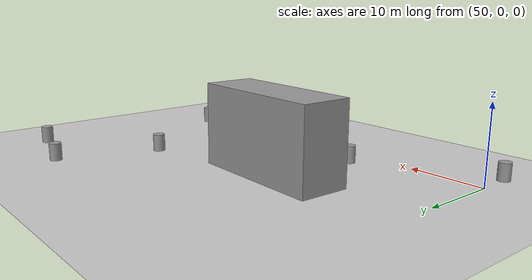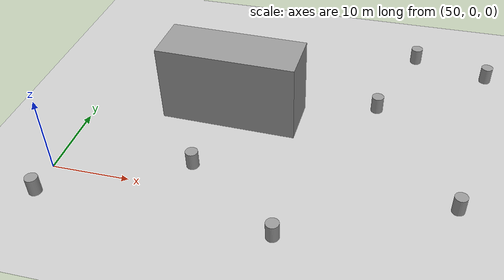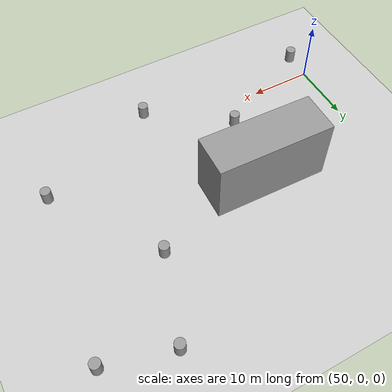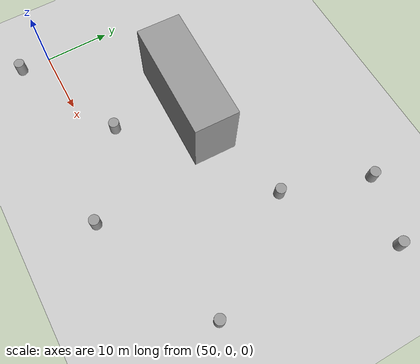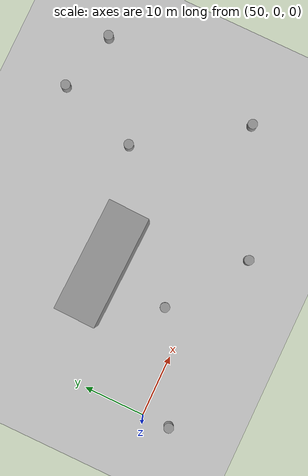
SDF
<sdf version="1.7">
 <world name="default">
  <model name="ground_plane">
   <static>1</static>
   <link name="link">
    <collision name="collision">
     <geometry><plane><normal>0 0 1</normal><size>100 100</size></plane></geometry>
     <surface>
      <contact><collide_bitmask>65535</collide_bitmask></contact>
      <friction><ode><mu>100</mu><mu2>50</mu2></ode></friction>
     </surface>
    </collision>
    <visual name="visual">
     <cast_shadows>0</cast_shadows>
     <geometry><plane><normal>0 0 1</normal><size>100 100</size></plane></geometry>
     <material>
      <script><uri>file://media/materials/scripts/gazebo.material</uri><name>Gazebo/Grey</name></script>
     </material>
    </visual>
   </link>
  </model>
  <model name="unit_box_clone_1_clone">
   <pose>68.8065 15.4667 5.29335 0 6e-06 3.11407</pose>
   <link name="link">
    <inertial>
     <mass>1</mass>
     <inertia>
      <ixx>0.166667</ixx>
      <ixy>0</ixy>
      <ixz>0</ixz>
      <iyy>0.166667</iyy>
      <iyz>0</iyz>
      <izz>0.166667</izz>
     </inertia>
    </inertial>
    <collision name="collision"><geometry><box><size>18.0952 6.6413 10.4868</size></box></geometry></collision>
    <visual name="visual">
     <geometry><box><size>18.0952 6.6413 10.4868</size></box></geometry>
     <material>
      <script><name>Gazebo/Grey</name><uri>file://media/materials/scripts/gazebo.material</uri></script>
     </material>
    </visual>
   </link>
  </model>
  <model name="unit_cylinder_clone_12">
   <pose>102.049 30.6405 1.20247 -1e-06 3e-06 0.000131</pose>
   <link name="link">
    <inertial>
     <mass>1</mass>
     <inertia><ixx>0.145833</ixx><ixy>0</ixy><ixz>0</ixz><iyy>0.145833</iyy><iyz>0</iyz><izz>0.125</izz></inertia>
    </inertial>
    <collision name="collision">
     <geometry><cylinder><radius>0.796868</radius><length>2.30493</length></cylinder></geometry>
    </collision>
    <visual name="visual">
     <geometry><cylinder><radius>0.796868</radius><length>2.30493</length></cylinder></geometry>
     <material>
      <script><name>Gazebo/Grey</name><uri>file://media/materials/scripts/gazebo.material</uri></script>
     </material>
    </visual>
   </link>
  </model>
  <model name="unit_cylinder_clone_13">
   <pose>87.6025 20.2274 1.20246 0 -1e-06 0.000309</pose>
   <link name="link">
    <inertial>
     <mass>1</mass>
     <inertia><ixx>0.145833</ixx><ixy>0</ixy><ixz>0</ixz><iyy>0.145833</iyy><iyz>0</iyz><izz>0.125</izz></inertia>
    </inertial>
    <collision name="collision">
     <geometry><cylinder><radius>0.796868</radius><length>2.30493</length></cylinder></geometry>
    </collision>
    <visual name="visual">
     <geometry><cylinder><radius>0.796868</radius><length>2.30493</length></cylinder></geometry>
     <material>
      <script><name>Gazebo/Grey</name><uri>file://media/materials/scripts/gazebo.material</uri></script>
     </material>
    </visual>
   </link>
  </model>
  <model name="unit_cylinder_clone_14">
   <pose>91.9413 33.3856 1.20246 0 -0 0.000232</pose>
   <link name="link">
    <inertial>
     <mass>1</mass>
     <inertia><ixx>0.145833</ixx><ixy>0</ixy><ixz>0</ixz><iyy>0.145833</iyy><iyz>0</iyz><izz>0.125</izz></inertia>
    </inertial>
    <collision name="collision">
     <geometry><cylinder><radius>0.796868</radius><length>2.30493</length></cylinder></geometry>
    </collision>
    <visual name="visual">
     <geometry><cylinder><radius>0.796868</radius><length>2.30493</length></cylinder></geometry>
     <material>
      <script><name>Gazebo/Grey</name><uri>file://media/materials/scripts/gazebo.material</uri></script>
     </material>
    </visual>
   </link>
  </model>
  <model name="unit_cylinder_clone_15">
   <pose>98.8791 3.83944 1.20247 6e-06 2e-06 0.000185</pose>
   <link name="link">
    <inertial>
     <mass>1</mass>
     <inertia><ixx>0.145833</ixx><ixy>0</ixy><ixz>0</ixz><iyy>0.145833</iyy><iyz>0</iyz><izz>0.125</izz></inertia>
    </inertial>
    <collision name="collision">
     <geometry><cylinder><radius>0.796868</radius><length>2.30493</length></cylinder></geometry>
    </collision>
    <visual name="visual">
     <geometry><cylinder><radius>0.796868</radius><length>2.30493</length></cylinder></geometry>
     <material>
      <script><name>Gazebo/Grey</name><uri>file://media/materials/scripts/gazebo.material</uri></script>
     </material>
    </visual>
   </link>
  </model>
  <model name="unit_cylinder_clone_16">
   <pose>79.1032 -4.7366 1.20247 2e-06 1e-06 0.00015</pose>
   <link name="link">
    <inertial>
     <mass>1</mass>
     <inertia><ixx>0.145833</ixx><ixy>0</ixy><ixz>0</ixz><iyy>0.145833</iyy><iyz>0</iyz><izz>0.125</izz></inertia>
    </inertial>
    <collision name="collision">
     <geometry><cylinder><radius>0.796868</radius><length>2.30493</length></cylinder></geometry>
    </collision>
    <visual name="visual">
     <geometry><cylinder><radius>0.796868</radius><length>2.30493</length></cylinder></geometry>
     <material>
      <script><name>Gazebo/Grey</name><uri>file://media/materials/scripts/gazebo.material</uri></script>
     </material>
    </visual>
   </link>
  </model>
  <model name="unit_cylinder_clone_17">
   <pose>66.7781 4.07211 1.20246 0 -0 0.000224</pose>
   <link name="link">
    <inertial>
     <mass>1</mass>
     <inertia><ixx>0.145833</ixx><ixy>0</ixy><ixz>0</ixz><iyy>0.145833</iyy><iyz>0</iyz><izz>0.125</izz></inertia>
    </inertial>
    <collision name="collision">
     <geometry><cylinder><radius>0.796868</radius><length>2.30493</length></cylinder></geometry>
    </collision>
    <visual name="visual">
     <geometry><cylinder><radius>0.796868</radius><length>2.30493</length></cylinder></geometry>
     <material>
      <script><name>Gazebo/Grey</name><uri>file://media/materials/scripts/gazebo.material</uri></script>
     </material>
    </visual>
   </link>
  </model>
  <model name="unit_cylinder_clone_18">
   <pose>50.1371 -4.41591 1.20247 2e-06 -7e-06 0.000231</pose>
   <link name="link">
    <inertial>
     <mass>1</mass>
     <inertia><ixx>0.145833</ixx><ixy>0</ixy><ixz>0</ixz><iyy>0.145833</iyy><iyz>0</iyz><izz>0.125</izz></inertia>
    </inertial>
    <collision name="collision">
     <geometry><cylinder><radius>0.796868</radius><length>2.30493</length></cylinder></geometry>
    </collision>
    <visual name="visual">
     <geometry><cylinder><radius>0.796868</radius><length>2.30493</length></cylinder></geometry>
     <material>
      <script><name>Gazebo/Grey</name><uri>file://media/materials/scripts/gazebo.material</uri></script>
     </material>
    </visual>
   </link>
  </model>
 </world>
</sdf>
